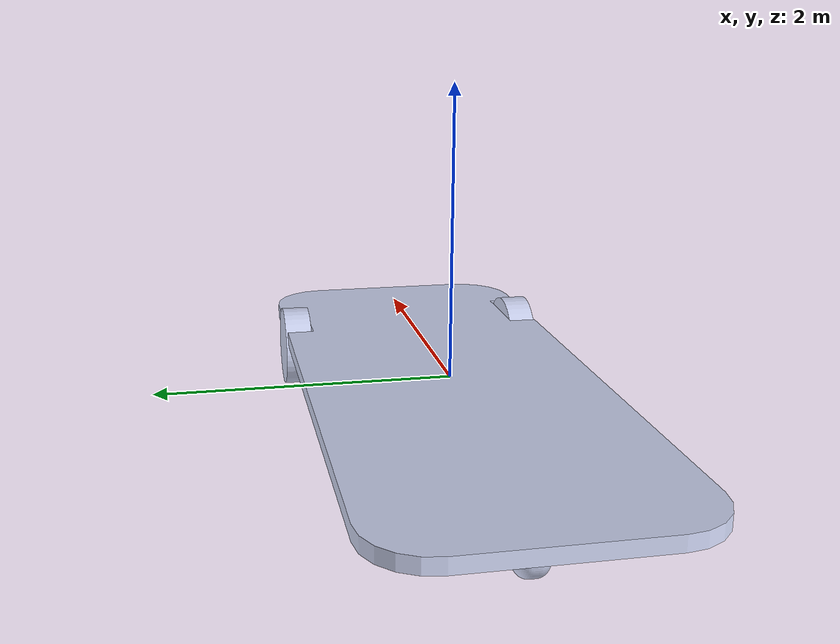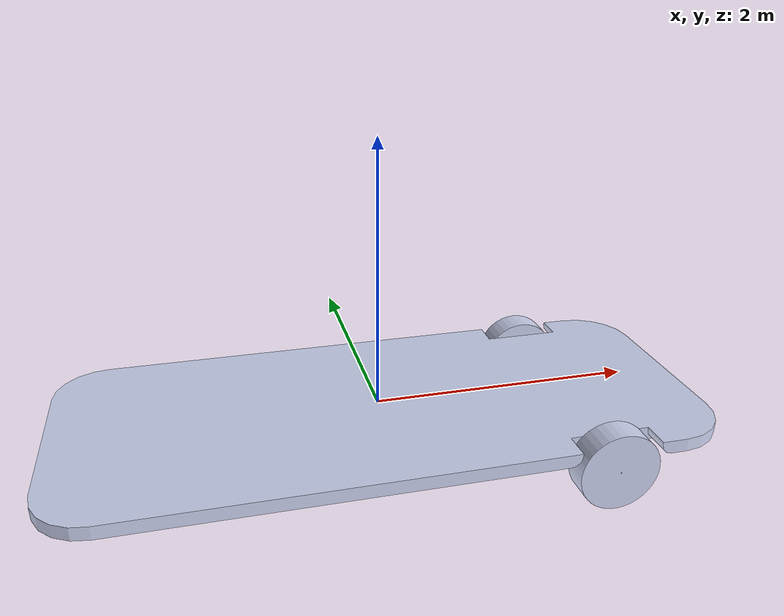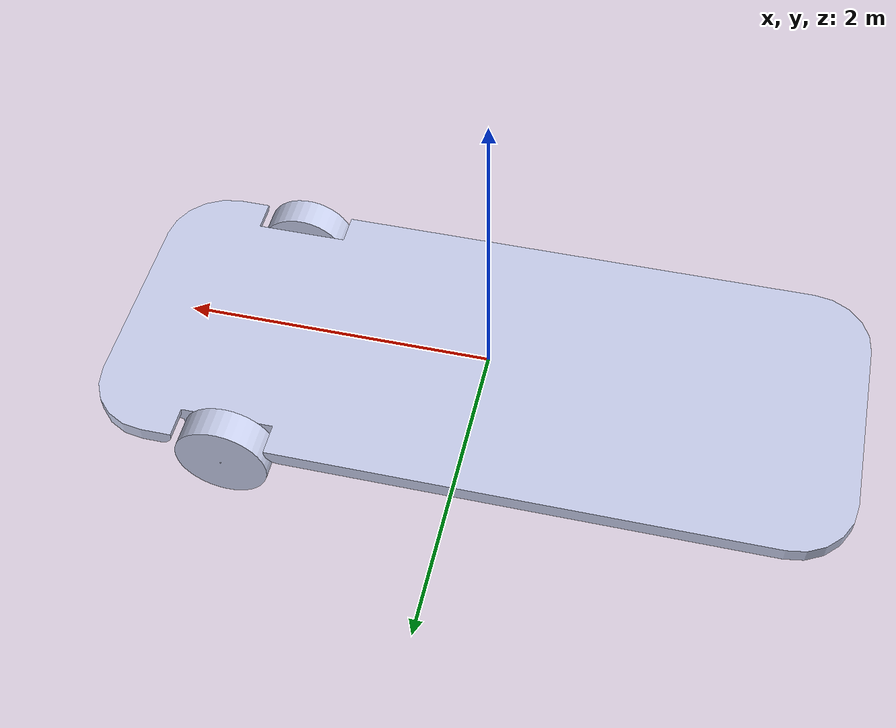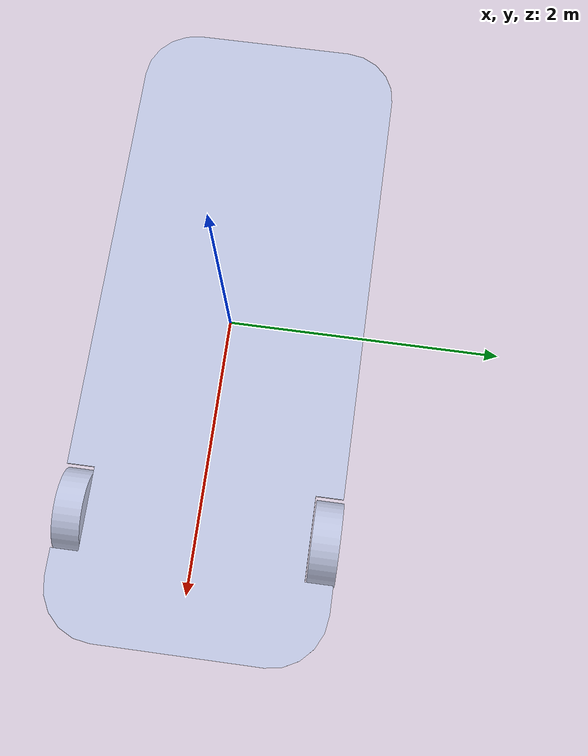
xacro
<?xml version='1.0'?>
<robot
  name="duckiecar" xmlns:xacro="http://www.ros.org/wiki/xacro">
  <xacro:arg name="veh" default="$(arg veh)"/>

  <gazebo>
    <plugin filename="libgazebo_ros_diff_drive.so" name="differential_drive_controller">
      <legacyMode>false</legacyMode>
      <alwaysOn>true</alwaysOn>
      <updateRate>10</updateRate>
      <leftJoint>lwheel_joint</leftJoint>
      <rightJoint>rwheel_joint</rightJoint>
      <wheelSeparation>2.02</wheelSeparation>
      <wheelDiameter>1.5</wheelDiameter>
      <torque>100</torque>
      <commandTopic>$(arg veh)/cmd_vel</commandTopic>
      <odometryTopic>$(arg veh)/odom</odometryTopic>
      <odometryFrame>gazebo</odometryFrame>
      <robotBaseFrame>base_link</robotBaseFrame>
    </plugin>
  </gazebo>

  <gazebo>
    <plugin name="p3d_plugin" filename="libgazebo_ros_p3d.so">
    <bodyName>base_link</bodyName>
    <frameName>world</frameName>
    <!--How to define an empty string in xacro?-->
    <updateRate>10.0</updateRate>
    <topicName>p3d_odom</topicName>
    <xyzOffset>0 0 0</xyzOffset>
    <rpyOffset>0 0 0</rpyOffset>
    <gaussianNoise>0</gaussianNoise>
    </plugin>
  </gazebo>

  <gazebo>
    <plugin name="gps_plugin" filename="libhector_gazebo_ros_gps.so">
    <updateRate>1.0</updateRate>
    <alwaysOn>true</alwaysOn>
    <bodyName>base_link</bodyName>
    <frameId>base_link</frameId>
    <topicName>gps/fix</topicName>
    <velocityTopicName>fix_velocity</velocityTopicName>

    <referenceLatitude>24.788522</referenceLatitude>
    <referenceLongitude>121.000296</referenceLongitude>
    <referenceAltitude>10.0</referenceAltitude>

    <offset>0.0 0.0 0.0</offset>
    <drift>0.0 0.0 0.0</drift>
    <gaussianNoise>0.1 0.1 0.1</gaussianNoise>

    <velocityOffset>0.0 0.0 0.0</velocityOffset>
    <velocityDrift>0.0 0.0 0.0</velocityDrift>
    <velocityGaussianNoise>0.0 0.0 0.0</velocityGaussianNoise>
      </plugin>
  </gazebo>

  <gazebo>
    <plugin name="imu_plugin" filename="libhector_gazebo_ros_imu.so">
      <updateRate>10.0</updateRate>
      <bodyName>base_link</bodyName>
      <topicName>imu/data</topicName>
      <serviceName>imu_service</serviceName>
      <frame_id>base_link</frame_id>
      <alwaysOn>true</alwaysOn>

      <accelOffset>0.0 0.0 0.0</accelOffset>
      <accelDrift>0.0 0.0 0.0</accelDrift>
      <accelDriftFrequency>0.00027 0.00027 0.000027</accelDriftFrequency>
      <accelGaussianNoise>0.0 0.0 0.0</accelGaussianNoise>

      <rateOffset>0.0 0.0 0.0</rateOffset>
      <rateDrift>0.0 0.0 0.0</rateDrift>
      <rateDriftFrequency>0.00027 0.00027 0.000027</rateDriftFrequency>
      <rateGaussianNoise>0.0 0.0 0.0</rateGaussianNoise>

      <yawOffset>0.0</yawOffset>
      <yawDrift>0.0</yawDrift>
      <yawDriftFrequency>0.00027</yawDriftFrequency>
      <yawGaussianNoise>0.0</yawGaussianNoise>

    </plugin>
  </gazebo>

  <gazebo reference="camera">
    <material>Gazebo/Blue</material>
    <sensor name="camera_1" type="camera">
      <update_rate>30</update_rate>
      <camera name="head">
        <horizontal_fov>1.7</horizontal_fov>
        <image>
          <width>1920</width>
          <height>1440</height>
          <format>R8G8B8</format>
        </image>
        <clip>
          <near>0.1</near>
          <far>200</far>
        </clip>
      </camera>
      <plugin filename="libgazebo_ros_camera.so" name="camera_controller">
        <alwaysOn>true</alwaysOn>
        <updateRate>0.0</updateRate>
        <cameraName>$(arg veh)/front/camera_node</cameraName>
        <imageTopicName>image/raw</imageTopicName>
        <cameraInfoTopicName>camera_info</cameraInfoTopicName>
        <frameName>camera</frameName>
        <hackBaseline>0.07</hackBaseline>
      </plugin>
    </sensor>
  </gazebo>

  <link
    name="base_link">
    <inertial>
      <origin
        xyz="-0.0153668055531249 4.44089209850063E-16 -0.0534671165486267"
        rpy="0 0 0" />
      <mass
        value="9.47122649398591" />
      <inertia
        ixx="301.370472338624"
        ixy="6.92689818265253E-14"
        ixz="3.94653819656364"
        iyy="1777.28080412065"
        iyz="3.19879497076535E-16"
        izz="2076.11241179997" />
    </inertial>
    <visual>
      <origin
        xyz="0 0 0"
        rpy="0 0 0" />
      <geometry>
        <mesh
          filename="package://duckiecar/meshes/base_link.STL" />
      </geometry>
      <material
        name="">
        <color
          rgba="0.792156862745098 0.819607843137255 0.933333333333333 1" />
      </material>
    </visual>
    <collision>
      <origin
        xyz="0 0 0"
        rpy="0 0 0" />
      <geometry>
        <mesh
          filename="package://duckiecar/meshes/base_link.STL" />
      </geometry>
    </collision>
  </link>
  <link
    name="lwheel_link">
    <inertial>
      <origin
        xyz="0 -0.1 0"
        rpy="0 0 0" />
      <mass
        value="5.65329598013484" />
      <inertia
        ixx="1.46078812586693"
        ixy="-1.49642487348259E-19"
        ixz="9.26909908492597E-17"
        iyy="2.5446898530582"
        iyz="2.48462997861263E-19"
        izz="1.46078812586693" />
    </inertial>
    <visual>
      <origin
        xyz="0 0 0"
        rpy="0 0 0" />
      <geometry>
        <mesh
          filename="package://duckiecar/meshes/lwheel_link.STL" />
      </geometry>
      <material
        name="">
        <color
          rgba="0.792156862745098 0.819607843137255 0.933333333333333 1" />
      </material>
    </visual>
    <collision>
      <origin
        xyz="0 0 0"
        rpy="0 0 0" />
      <geometry>
        <mesh
          filename="package://duckiecar/meshes/lwheel_link.STL" />
      </geometry>
    </collision>
  </link>
  <joint
    name="lwheel_joint"
    type="continuous">
    <origin
      xyz="1.5 1.01 -0.200000000000002"
      rpy="0 0 0" />
    <parent
      link="base_link" />
    <child
      link="lwheel_link" />
    <axis
      xyz="0 1 0" />
  </joint>
  <link
    name="rwheel_link">
    <inertial>
      <origin
        xyz="0 0.100000000000001 -4.44089209850063E-16"
        rpy="0 0 0" />
      <mass
        value="5.65329598013484" />
      <inertia
        ixx="1.46078812586693"
        ixy="-5.64688631530968E-21"
        ixz="-1.49975976027745E-39"
        iyy="2.5446898530582"
        iyz="3.27926555825625E-33"
        izz="1.46078812586693" />
    </inertial>
    <visual>
      <origin
        xyz="0 0 0"
        rpy="0 0 0" />
      <geometry>
        <mesh
          filename="package://duckiecar/meshes/rwheel_link.STL" />
      </geometry>
      <material
        name="">
        <color
          rgba="0.792156862745098 0.819607843137255 0.933333333333333 1" />
      </material>
    </visual>
    <collision>
      <origin
        xyz="0 0 0"
        rpy="0 0 0" />
      <geometry>
        <mesh
          filename="package://duckiecar/meshes/rwheel_link.STL" />
      </geometry>
    </collision>
  </link>
  <joint
    name="rwheel_joint"
    type="continuous">
    <origin
      xyz="1.5 -1.01 -0.2"
      rpy="0 0 0" />
    <parent
      link="base_link" />
    <child
      link="rwheel_link" />
    <axis
      xyz="0 1 0" />
  </joint>
  <link
    name="connect_link">
    <inertial>
      <origin
        xyz="6.93889390390723E-17 -4.44089209850063E-16 -0.0822001861947705"
        rpy="0 0 0" />
      <mass
        value="0.122264377536546" />
      <inertia
        ixx="0.353513318523549"
        ixy="3.80767513481362E-17"
        ixz="-1.32530970550295E-17"
        iyy="0.2089975590477"
        iyz="8.86602793776468E-18"
        izz="0.441447901999517" />
    </inertial>
    <visual>
      <origin
        xyz="0 0 0"
        rpy="0 0 0" />
      <geometry>
        <mesh
          filename="package://duckiecar/meshes/connect_link.STL" />
      </geometry>
      <material
        name="">
        <color
          rgba="0.792156862745098 0.819607843137255 0.933333333333333 1" />
      </material>
    </visual>
    <collision>
      <origin
        xyz="0 0 0"
        rpy="0 0 0" />
      <geometry>
        <mesh
          filename="package://duckiecar/meshes/connect_link.STL" />
      </geometry>
    </collision>
  </link>
  <joint
    name="connect_joint"
    type="continuous">
    <origin
      xyz="-1.8 0 -0.15"
      rpy="0 0 1.78584683734892E-17" />
    <parent
      link="base_link" />
    <child
      link="connect_link" />
    <axis
      xyz="0 0 1" />
  </joint>
  <link
    name="swheel_link">
    <inertial>
      <origin
        xyz="0 0.0999999999999996 0"
        rpy="0 0 0" />
      <mass
        value="0.118409774219159" />
      <inertia
        ixx="0.090404402128395"
        ixy="-1.69109339641811E-18"
        ixz="2.47732900679935E-18"
        iyy="0.117748995016967"
        iyz="-2.53078772530991E-18"
        izz="0.090404402128395" />
    </inertial>
    <visual>
      <origin
        xyz="0 0 0"
        rpy="0 0 0" />
      <geometry>
        <mesh
          filename="package://duckiecar/meshes/swheel_link.STL" />
      </geometry>
      <material
        name="">
        <color
          rgba="0.792156862745098 0.819607843137255 0.933333333333333 1" />
      </material>
    </visual>
    <collision>
      <origin
        xyz="0 0 0"
        rpy="0 0 0" />
      <geometry>
        <mesh
          filename="package://duckiecar/meshes/swheel_link.STL" />
      </geometry>
    </collision>
  </link>
  <joint
    name="swheel_joint"
    type="continuous">
    <origin
      xyz="0 -0.1 -0.2"
      rpy="0 0 -1.78584683734892E-17" />
    <parent
      link="connect_link" />
    <child
      link="swheel_link" />
    <axis
      xyz="0 1 0" />
  </joint>
</robot>
